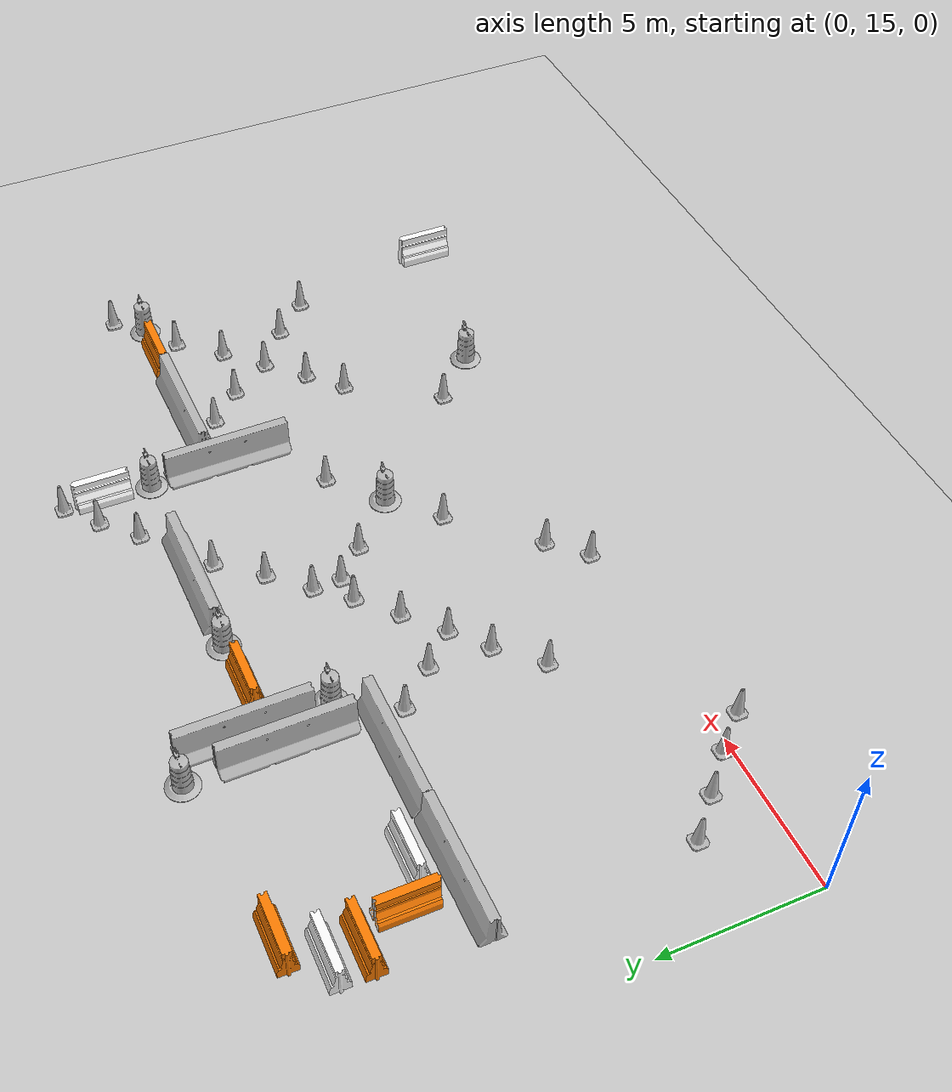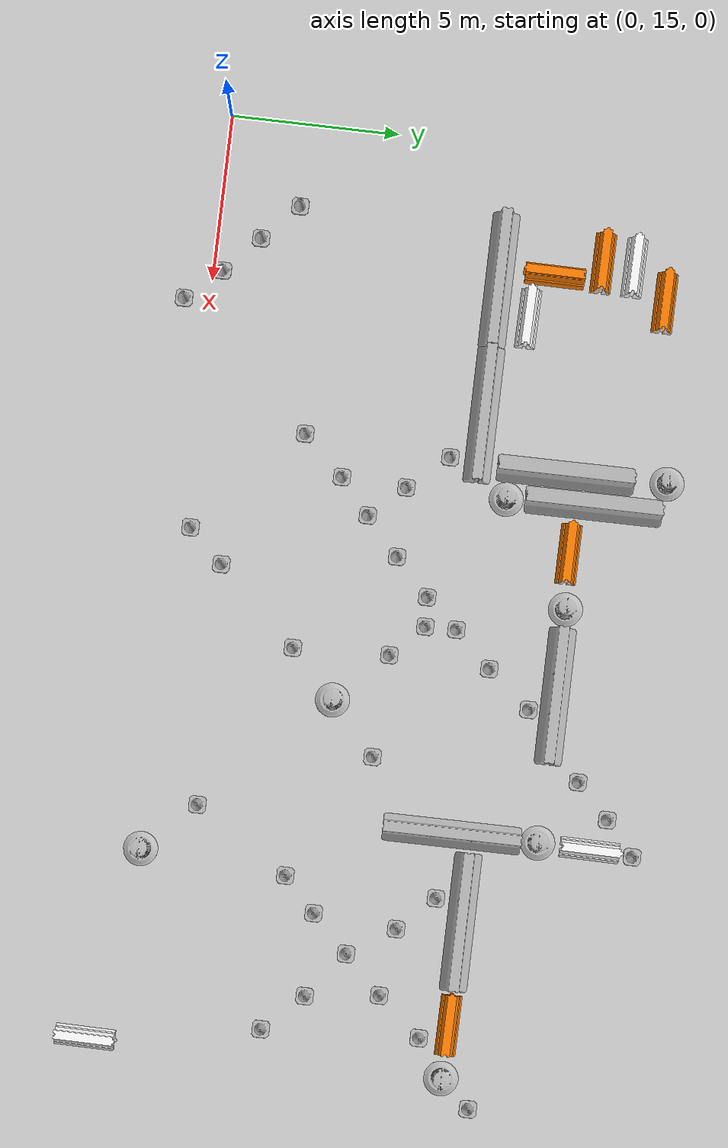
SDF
<sdf version="1.6">
 <world name="default">
  <model name="ground_plane">
   <static>1</static>
   <link name="link">
    <collision name="collision">
     <geometry><plane><normal>0 0 1</normal><size>100 100</size></plane></geometry>
     <surface>
      <contact><collide_bitmask>65535</collide_bitmask></contact>
      <friction><ode><mu>100</mu><mu2>50</mu2></ode></friction>
     </surface>
    </collision>
    <visual name="visual">
     <cast_shadows>0</cast_shadows>
     <geometry><plane><normal>0 0 1</normal><size>100 100</size></plane></geometry>
     <material>
      <script><uri>file://media/materials/scripts/gazebo.material</uri><name>Gazebo/Grey</name></script>
     </material>
    </visual>
   </link>
  </model>
  <model name="drc_practice_white_jersey_barrier_clone_clone_clone_clone_clone_clone">
   <static>1</static>
   <link name="link">
    <visual name="visual">
     <geometry>
      <mesh><uri>model://drc_practice_white_jersey_barrier/meshes/jersey_barrier.dae</uri></mesh>
     </geometry>
    </visual>
    <collision name="collision">
     <geometry>
      <mesh><uri>model://drc_practice_white_jersey_barrier/meshes/jersey_barrier.dae</uri></mesh>
     </geometry>
    </collision>
   </link>
   <pose>3.18572 27.399 0 0 0 -1.58176</pose>
  </model>
  <model name="drc_practice_organge_jersey_barrier_clone_clone">
   <static>1</static>
   <link name="link">
    <visual name="visual">
     <geometry>
      <mesh><uri>model://drc_practice_orange_jersey_barrier/meshes/jersey_barrier.dae</uri></mesh>
     </geometry>
    </visual>
    <collision name="collision">
     <geometry>
      <mesh><uri>model://drc_practice_orange_jersey_barrier/meshes/jersey_barrier.dae</uri></mesh>
     </geometry>
    </collision>
   </link>
   <pose>3.16298 26.4651 0 0 0 -1.57472</pose>
  </model>
  <model name="drc_practice_organge_jersey_barrier_clone_clone_clone">
   <static>1</static>
   <link name="link">
    <visual name="visual">
     <geometry>
      <mesh><uri>model://drc_practice_orange_jersey_barrier/meshes/jersey_barrier.dae</uri></mesh>
     </geometry>
    </visual>
    <collision name="collision">
     <geometry>
      <mesh><uri>model://drc_practice_orange_jersey_barrier/meshes/jersey_barrier.dae</uri></mesh>
     </geometry>
    </collision>
   </link>
   <pose>4.12989 28.4071 0 0 0 -1.57472</pose>
  </model>
  <model name="drc_practice_organge_jersey_barrier_clone_clone_0">
   <static>1</static>
   <link name="link">
    <visual name="visual">
     <geometry>
      <mesh><uri>model://drc_practice_orange_jersey_barrier/meshes/jersey_barrier.dae</uri></mesh>
     </geometry>
    </visual>
    <collision name="collision">
     <geometry>
      <mesh><uri>model://drc_practice_orange_jersey_barrier/meshes/jersey_barrier.dae</uri></mesh>
     </geometry>
    </collision>
   </link>
   <pose>3.6883 25.0832 0 0 -0 0</pose>
  </model>
  <model name="drc_practice_white_jersey_barrier_clone_clone_clone_clone_clone_clone_clone">
   <static>1</static>
   <link name="link">
    <visual name="visual">
     <geometry>
      <mesh><uri>model://drc_practice_white_jersey_barrier/meshes/jersey_barrier.dae</uri></mesh>
     </geometry>
    </visual>
    <collision name="collision">
     <geometry>
      <mesh><uri>model://drc_practice_white_jersey_barrier/meshes/jersey_barrier.dae</uri></mesh>
     </geometry>
    </collision>
   </link>
   <pose>5.0618 24.4389 0 0 0 -1.58176</pose>
  </model>
  <model name="jersey_barrier_clone_clone_clone_0_clone_clone_clone">
   <static>1</static>
   <link name="link">
    <visual name="visual">
     <geometry><mesh><uri>model://jersey_barrier/meshes/jersey_barrier.dae</uri></mesh></geometry>
    </visual>
    <collision name="upright">
     <pose>0 0 0.5715 0 -0 0</pose>
     <geometry><box><size>4.06542 0.3063 1.143</size></box></geometry>
    </collision>
    <collision name="base">
     <pose>0 0 0.032258 0 -0 0</pose>
     <geometry><box><size>4.06542 0.8107 0.064516</size></box></geometry>
    </collision>
    <collision name="base2">
     <pose>0 0 0.1 0 -0 0</pose>
     <geometry><box><size>4.06542 0.65 0.1</size></box></geometry>
    </collision>
    <collision name="base3">
     <pose>0 0 0.2 0 -0 0</pose>
     <geometry><box><size>4.06542 0.5 0.1</size></box></geometry>
    </collision>
    <collision name="left-angle">
     <pose>0 -0.224 0.2401 0.9 -0 0</pose>
     <geometry><box><size>4.06542 0.5 0.064516</size></box></geometry>
    </collision>
    <collision name="right-angle">
     <pose>0 0.224 0.2401 -0.9 0 0</pose>
     <geometry><box><size>4.06542 0.5 0.064516</size></box></geometry>
    </collision>
   </link>
   <pose>4.01567 23.4568 0 0 -0 0</pose>
  </model>
  <model name="jersey_barrier_clone_clone_clone_0_clone_clone_clone_clone">
   <static>1</static>
   <link name="link">
    <visual name="visual">
     <geometry><mesh><uri>model://jersey_barrier/meshes/jersey_barrier.dae</uri></mesh></geometry>
    </visual>
    <collision name="upright">
     <pose>0 0 0.5715 0 -0 0</pose>
     <geometry><box><size>4.06542 0.3063 1.143</size></box></geometry>
    </collision>
    <collision name="base">
     <pose>0 0 0.032258 0 -0 0</pose>
     <geometry><box><size>4.06542 0.8107 0.064516</size></box></geometry>
    </collision>
    <collision name="base2">
     <pose>0 0 0.1 0 -0 0</pose>
     <geometry><box><size>4.06542 0.65 0.1</size></box></geometry>
    </collision>
    <collision name="base3">
     <pose>0 0 0.2 0 -0 0</pose>
     <geometry><box><size>4.06542 0.5 0.1</size></box></geometry>
    </collision>
    <collision name="left-angle">
     <pose>0 -0.224 0.2401 0.9 -0 0</pose>
     <geometry><box><size>4.06542 0.5 0.064516</size></box></geometry>
    </collision>
    <collision name="right-angle">
     <pose>0 0.224 0.2401 -0.9 0 0</pose>
     <geometry><box><size>4.06542 0.5 0.064516</size></box></geometry>
    </collision>
   </link>
   <pose>8.05825 23.4717 0 0 -0 0</pose>
  </model>
  <model name="jersey_barrier_clone_clone_clone_clone">
   <static>1</static>
   <link name="link">
    <visual name="visual">
     <geometry><mesh><uri>model://jersey_barrier/meshes/jersey_barrier.dae</uri></mesh></geometry>
    </visual>
    <collision name="upright">
     <pose>0 0 0.5715 0 -0 0</pose>
     <geometry><box><size>4.06542 0.3063 1.143</size></box></geometry>
    </collision>
    <collision name="base">
     <pose>0 0 0.032258 0 -0 0</pose>
     <geometry><box><size>4.06542 0.8107 0.064516</size></box></geometry>
    </collision>
    <collision name="base2">
     <pose>0 0 0.1 0 -0 0</pose>
     <geometry><box><size>4.06542 0.65 0.1</size></box></geometry>
    </collision>
    <collision name="base3">
     <pose>0 0 0.2 0 -0 0</pose>
     <geometry><box><size>4.06542 0.5 0.1</size></box></geometry>
    </collision>
    <collision name="left-angle">
     <pose>0 -0.224 0.2401 0.9 -0 0</pose>
     <geometry><box><size>4.06542 0.5 0.064516</size></box></geometry>
    </collision>
    <collision name="right-angle">
     <pose>0 0.224 0.2401 -0.9 0 0</pose>
     <geometry><box><size>4.06542 0.5 0.064516</size></box></geometry>
    </collision>
   </link>
   <pose>10.3741 26.9941 0 0 0 -1.56391</pose>
  </model>
  <model name="Construction Barrel_clone_clone_0_clone">
   <static>1</static>
   <link name="link">
    <inertial>
     <pose>0 0 0.4 0 -0 0</pose>
     <mass>500</mass>
     <inertia><ixx>51.2096</ixx><iyy>51.2096</iyy><izz>25</izz><ixy>0</ixy><ixz>0</ixz><iyz>0</iyz></inertia>
    </inertial>
    <collision name="collision">
     <geometry><mesh><uri>model://construction_barrel/meshes/construction_barrel.dae</uri></mesh></geometry>
    </collision>
    <visual name="visual">
     <geometry><mesh><uri>model://construction_barrel/meshes/construction_barrel.dae</uri></mesh></geometry>
    </visual>
   </link>
   <pose>10.46 24.419 -4e-06 -5e-06 -7e-06 -0.001185</pose>
  </model>
  <model name="drc_practice_organge_jersey_barrier_clone_clone_clone_0">
   <static>1</static>
   <link name="link">
    <visual name="visual">
     <geometry>
      <mesh><uri>model://drc_practice_orange_jersey_barrier/meshes/jersey_barrier.dae</uri></mesh>
     </geometry>
    </visual>
    <collision name="collision">
     <geometry>
      <mesh><uri>model://drc_practice_orange_jersey_barrier/meshes/jersey_barrier.dae</uri></mesh>
     </geometry>
    </collision>
   </link>
   <pose>11.881 26.4249 0 0 0 -1.57472</pose>
  </model>
  <model name="Construction Barrel_clone_clone_0_clone_clone">
   <static>1</static>
   <link name="link">
    <inertial>
     <pose>0 0 0.4 0 -0 0</pose>
     <mass>500</mass>
     <inertia><ixx>51.2096</ixx><iyy>51.2096</iyy><izz>25</izz><ixy>0</ixy><ixz>0</ixz><iyz>0</iyz></inertia>
    </inertial>
    <collision name="collision">
     <geometry><mesh><uri>model://construction_barrel/meshes/construction_barrel.dae</uri></mesh></geometry>
    </collision>
    <visual name="visual">
     <geometry><mesh><uri>model://construction_barrel/meshes/construction_barrel.dae</uri></mesh></geometry>
    </visual>
   </link>
   <pose>13.5043 26.5281 -0 0 0 -0.001456</pose>
  </model>
  <model name="jersey_barrier_clone_clone_clone_0_clone_clone_clone_clone_clone">
   <static>1</static>
   <link name="link">
    <visual name="visual">
     <geometry><mesh><uri>model://jersey_barrier/meshes/jersey_barrier.dae</uri></mesh></geometry>
    </visual>
    <collision name="upright">
     <pose>0 0 0.5715 0 -0 0</pose>
     <geometry><box><size>4.06542 0.3063 1.143</size></box></geometry>
    </collision>
    <collision name="base">
     <pose>0 0 0.032258 0 -0 0</pose>
     <geometry><box><size>4.06542 0.8107 0.064516</size></box></geometry>
    </collision>
    <collision name="base2">
     <pose>0 0 0.1 0 -0 0</pose>
     <geometry><box><size>4.06542 0.65 0.1</size></box></geometry>
    </collision>
    <collision name="base3">
     <pose>0 0 0.2 0 -0 0</pose>
     <geometry><box><size>4.06542 0.5 0.1</size></box></geometry>
    </collision>
    <collision name="left-angle">
     <pose>0 -0.224 0.2401 0.9 -0 0</pose>
     <geometry><box><size>4.06542 0.5 0.064516</size></box></geometry>
    </collision>
    <collision name="right-angle">
     <pose>0 0.224 0.2401 -0.9 0 0</pose>
     <geometry><box><size>4.06542 0.5 0.064516</size></box></geometry>
    </collision>
   </link>
   <pose>16.0869 26.5207 0 0 -0 0</pose>
  </model>
  <model name="Construction Cone_0_clone_0_clone_clone_clone_clone">
   <static>1</static>
   <link name="link">
    <collision name="collision">
     <geometry>
      <mesh><scale>10 10 10</scale><uri>model://construction_cone/meshes/construction_cone.dae</uri></mesh>
     </geometry>
    </collision>
    <visual name="visual">
     <geometry>
      <mesh><scale>10 10 10</scale><uri>model://construction_cone/meshes/construction_cone.dae</uri></mesh>
     </geometry>
    </visual>
    <inertial>
     <inertia><ixx>1</ixx><ixy>0</ixy><ixz>0</ixz><iyy>1</iyy><iyz>0</iyz><izz>1</izz></inertia>
     <mass>1</mass>
    </inertial>
   </link>
   <pose>18.5169 27.4726 -0 0 -0 0</pose>
  </model>
  <model name="Construction Cone_0_clone_0_clone_clone_clone_clone_0">
   <static>1</static>
   <link name="link">
    <collision name="collision">
     <geometry>
      <mesh><scale>10 10 10</scale><uri>model://construction_cone/meshes/construction_cone.dae</uri></mesh>
     </geometry>
    </collision>
    <visual name="visual">
     <geometry>
      <mesh><scale>10 10 10</scale><uri>model://construction_cone/meshes/construction_cone.dae</uri></mesh>
     </geometry>
    </visual>
    <inertial>
     <inertia><ixx>1</ixx><ixy>0</ixy><ixz>0</ixz><iyy>1</iyy><iyz>0</iyz><izz>1</izz></inertia>
     <mass>1</mass>
    </inertial>
   </link>
   <pose>19.5169 28.4493 -0 0 -0 0</pose>
  </model>
  <model name="Construction Cone_0_clone_0_clone_clone_clone_clone_1">
   <static>1</static>
   <link name="link">
    <collision name="collision">
     <geometry>
      <mesh><scale>10 10 10</scale><uri>model://construction_cone/meshes/construction_cone.dae</uri></mesh>
     </geometry>
    </collision>
    <visual name="visual">
     <geometry>
      <mesh><scale>10 10 10</scale><uri>model://construction_cone/meshes/construction_cone.dae</uri></mesh>
     </geometry>
    </visual>
    <inertial>
     <inertia><ixx>1</ixx><ixy>0</ixy><ixz>0</ixz><iyy>1</iyy><iyz>0</iyz><izz>1</izz></inertia>
     <mass>1</mass>
    </inertial>
   </link>
   <pose>20.5097 29.2967 -3e-06 -3e-06 -1e-06 -0</pose>
  </model>
  <model name="drc_practice_white_jersey_barrier_clone_clone_clone_0_clone_0_clone_clone">
   <static>1</static>
   <link name="link">
    <visual name="visual">
     <geometry>
      <mesh><uri>model://drc_practice_white_jersey_barrier/meshes/jersey_barrier.dae</uri></mesh>
     </geometry>
    </visual>
    <collision name="collision">
     <geometry>
      <mesh><uri>model://drc_practice_white_jersey_barrier/meshes/jersey_barrier.dae</uri></mesh>
     </geometry>
    </collision>
   </link>
   <pose>20.4533 28.0237 0 0 -0 3.13979</pose>
  </model>
  <model name="Construction Barrel_clone_clone_0_clone_clone_clone">
   <static>1</static>
   <link name="link">
    <inertial>
     <pose>0 0 0.4 0 -0 0</pose>
     <mass>500</mass>
     <inertia><ixx>51.2096</ixx><iyy>51.2096</iyy><izz>25</izz><ixy>0</ixy><ixz>0</ixz><iyz>0</iyz></inertia>
    </inertial>
    <collision name="collision">
     <geometry><mesh><uri>model://construction_barrel/meshes/construction_barrel.dae</uri></mesh></geometry>
    </collision>
    <visual name="visual">
     <geometry><mesh><uri>model://construction_barrel/meshes/construction_barrel.dae</uri></mesh></geometry>
    </visual>
   </link>
   <pose>20.4259 26.4992 -0 -0 -0 -9.7e-05</pose>
  </model>
  <model name="jersey_barrier_clone_clone_clone_clone_clone">
   <static>1</static>
   <link name="link">
    <visual name="visual">
     <geometry><mesh><uri>model://jersey_barrier/meshes/jersey_barrier.dae</uri></mesh></geometry>
    </visual>
    <collision name="upright">
     <pose>0 0 0.5715 0 -0 0</pose>
     <geometry><box><size>4.06542 0.3063 1.143</size></box></geometry>
    </collision>
    <collision name="base">
     <pose>0 0 0.032258 0 -0 0</pose>
     <geometry><box><size>4.06542 0.8107 0.064516</size></box></geometry>
    </collision>
    <collision name="base2">
     <pose>0 0 0.1 0 -0 0</pose>
     <geometry><box><size>4.06542 0.65 0.1</size></box></geometry>
    </collision>
    <collision name="base3">
     <pose>0 0 0.2 0 -0 0</pose>
     <geometry><box><size>4.06542 0.5 0.1</size></box></geometry>
    </collision>
    <collision name="left-angle">
     <pose>0 -0.224 0.2401 0.9 -0 0</pose>
     <geometry><box><size>4.06542 0.5 0.064516</size></box></geometry>
    </collision>
    <collision name="right-angle">
     <pose>0 0.224 0.2401 -0.9 0 0</pose>
     <geometry><box><size>4.06542 0.5 0.064516</size></box></geometry>
    </collision>
   </link>
   <pose>20.4546 23.9567 0 0 0 -1.56391</pose>
  </model>
  <model name="Construction Cone_0_clone_0_clone_clone_clone_clone_clone">
   <static>1</static>
   <link name="link">
    <collision name="collision">
     <geometry>
      <mesh><scale>10 10 10</scale><uri>model://construction_cone/meshes/construction_cone.dae</uri></mesh>
     </geometry>
    </collision>
    <visual name="visual">
     <geometry>
      <mesh><scale>10 10 10</scale><uri>model://construction_cone/meshes/construction_cone.dae</uri></mesh>
     </geometry>
    </visual>
    <inertial>
     <inertia><ixx>1</ixx><ixy>0</ixy><ixz>0</ixz><iyy>1</iyy><iyz>0</iyz><izz>1</izz></inertia>
     <mass>1</mass>
    </inertial>
   </link>
   <pose>16.5664 25.784 -0 0 -0 0</pose>
  </model>
  <model name="Construction Cone_0_clone_0_clone_clone_clone_clone_clone_0">
   <static>1</static>
   <link name="link">
    <collision name="collision">
     <geometry>
      <mesh><scale>10 10 10</scale><uri>model://construction_cone/meshes/construction_cone.dae</uri></mesh>
     </geometry>
    </collision>
    <visual name="visual">
     <geometry>
      <mesh><scale>10 10 10</scale><uri>model://construction_cone/meshes/construction_cone.dae</uri></mesh>
     </geometry>
    </visual>
    <inertial>
     <inertia><ixx>1</ixx><ixy>0</ixy><ixz>0</ixz><iyy>1</iyy><iyz>0</iyz><izz>1</izz></inertia>
     <mass>1</mass>
    </inertial>
   </link>
   <pose>15.5064 24.4982 -0 0 -0 0</pose>
  </model>
  <model name="Construction Cone_0_clone_0_clone_clone_clone_clone_clone_1">
   <static>1</static>
   <link name="link">
    <collision name="collision">
     <geometry>
      <mesh><scale>10 10 10</scale><uri>model://construction_cone/meshes/construction_cone.dae</uri></mesh>
     </geometry>
    </collision>
    <visual name="visual">
     <geometry>
      <mesh><scale>10 10 10</scale><uri>model://construction_cone/meshes/construction_cone.dae</uri></mesh>
     </geometry>
    </visual>
    <inertial>
     <inertia><ixx>1</ixx><ixy>0</ixy><ixz>0</ixz><iyy>1</iyy><iyz>0</iyz><izz>1</izz></inertia>
     <mass>1</mass>
    </inertial>
   </link>
   <pose>14.4695 23.4001 -0 0 -0 0</pose>
  </model>
  <model name="Construction Cone_0_clone_0_clone_clone_clone_clone_clone_2">
   <static>1</static>
   <link name="link">
    <collision name="collision">
     <geometry>
      <mesh><scale>10 10 10</scale><uri>model://construction_cone/meshes/construction_cone.dae</uri></mesh>
     </geometry>
    </collision>
    <visual name="visual">
     <geometry>
      <mesh><scale>10 10 10</scale><uri>model://construction_cone/meshes/construction_cone.dae</uri></mesh>
     </geometry>
    </visual>
    <inertial>
     <inertia><ixx>1</ixx><ixy>0</ixy><ixz>0</ixz><iyy>1</iyy><iyz>0</iyz><izz>1</izz></inertia>
     <mass>1</mass>
    </inertial>
   </link>
   <pose>13.6165 22.4345 -1e-05 -0 -0 -0</pose>
  </model>
  <model name="Construction Cone_0_clone_0_clone_clone_clone_clone_clone_3">
   <static>1</static>
   <link name="link">
    <collision name="collision">
     <geometry>
      <mesh><scale>10 10 10</scale><uri>model://construction_cone/meshes/construction_cone.dae</uri></mesh>
     </geometry>
    </collision>
    <visual name="visual">
     <geometry>
      <mesh><scale>10 10 10</scale><uri>model://construction_cone/meshes/construction_cone.dae</uri></mesh>
     </geometry>
    </visual>
    <inertial>
     <inertia><ixx>1</ixx><ixy>0</ixy><ixz>0</ixz><iyy>1</iyy><iyz>0</iyz><izz>1</izz></inertia>
     <mass>1</mass>
    </inertial>
   </link>
   <pose>14.4874 22.4791 -0 0 -0 0</pose>
  </model>
  <model name="Construction Cone_0_clone_0_clone_clone_clone_clone_clone_4">
   <static>1</static>
   <link name="link">
    <collision name="collision">
     <geometry>
      <mesh><scale>10 10 10</scale><uri>model://construction_cone/meshes/construction_cone.dae</uri></mesh>
     </geometry>
    </collision>
    <visual name="visual">
     <geometry>
      <mesh><scale>10 10 10</scale><uri>model://construction_cone/meshes/construction_cone.dae</uri></mesh>
     </geometry>
    </visual>
    <inertial>
     <inertia><ixx>1</ixx><ixy>0</ixy><ixz>0</ixz><iyy>1</iyy><iyz>0</iyz><izz>1</izz></inertia>
     <mass>1</mass>
    </inertial>
   </link>
   <pose>12.5306 21.4117 -0 0 -0 0</pose>
  </model>
  <model name="Construction Cone_0_clone_0_clone_clone_clone_clone_clone_5">
   <static>1</static>
   <link name="link">
    <collision name="collision">
     <geometry>
      <mesh><scale>10 10 10</scale><uri>model://construction_cone/meshes/construction_cone.dae</uri></mesh>
     </geometry>
    </collision>
    <visual name="visual">
     <geometry>
      <mesh><scale>10 10 10</scale><uri>model://construction_cone/meshes/construction_cone.dae</uri></mesh>
     </geometry>
    </visual>
    <inertial>
     <inertia><ixx>1</ixx><ixy>0</ixy><ixz>0</ixz><iyy>1</iyy><iyz>0</iyz><izz>1</izz></inertia>
     <mass>1</mass>
    </inertial>
   </link>
   <pose>11.4155 20.4091 -0 0 -0 0</pose>
  </model>
  <model name="Construction Cone_0_clone_0_clone_clone_clone_clone_clone_6">
   <static>1</static>
   <link name="link">
    <collision name="collision">
     <geometry>
      <mesh><scale>10 10 10</scale><uri>model://construction_cone/meshes/construction_cone.dae</uri></mesh>
     </geometry>
    </collision>
    <visual name="visual">
     <geometry>
      <mesh><scale>10 10 10</scale><uri>model://construction_cone/meshes/construction_cone.dae</uri></mesh>
     </geometry>
    </visual>
    <inertial>
     <inertia><ixx>1</ixx><ixy>0</ixy><ixz>0</ixz><iyy>1</iyy><iyz>0</iyz><izz>1</izz></inertia>
     <mass>1</mass>
    </inertial>
   </link>
   <pose>10.4589 21.4449 -0 0 -0 0</pose>
  </model>
  <model name="Construction Cone_0_clone_0_clone_clone_clone_clone_clone_7">
   <static>1</static>
   <link name="link">
    <collision name="collision">
     <geometry>
      <mesh><scale>10 10 10</scale><uri>model://construction_cone/meshes/construction_cone.dae</uri></mesh>
     </geometry>
    </collision>
    <visual name="visual">
     <geometry>
      <mesh><scale>10 10 10</scale><uri>model://construction_cone/meshes/construction_cone.dae</uri></mesh>
     </geometry>
    </visual>
    <inertial>
     <inertia><ixx>1</ixx><ixy>0</ixy><ixz>0</ixz><iyy>1</iyy><iyz>0</iyz><izz>1</izz></inertia>
     <mass>1</mass>
    </inertial>
   </link>
   <pose>10.3713 19.5185 -0 0 -0 0</pose>
  </model>
  <model name="Construction Cone_0_clone_0_clone_clone_clone_clone_clone_8">
   <static>1</static>
   <link name="link">
    <collision name="collision">
     <geometry>
      <mesh><scale>10 10 10</scale><uri>model://construction_cone/meshes/construction_cone.dae</uri></mesh>
     </geometry>
    </collision>
    <visual name="visual">
     <geometry>
      <mesh><scale>10 10 10</scale><uri>model://construction_cone/meshes/construction_cone.dae</uri></mesh>
     </geometry>
    </visual>
    <inertial>
     <inertia><ixx>1</ixx><ixy>0</ixy><ixz>0</ixz><iyy>1</iyy><iyz>0</iyz><izz>1</izz></inertia>
     <mass>1</mass>
    </inertial>
   </link>
   <pose>9.21897 18.2858 -0 0 -0 0</pose>
  </model>
  <model name="Construction Barrel_clone_clone_0_clone_clone_0">
   <static>1</static>
   <link name="link">
    <inertial>
     <pose>0 0 0.4 0 -0 0</pose>
     <mass>500</mass>
     <inertia><ixx>51.2096</ixx><iyy>51.2096</iyy><izz>25</izz><ixy>0</ixy><ixz>0</ixz><iyz>0</iyz></inertia>
    </inertial>
    <collision name="collision">
     <geometry><mesh><uri>model://construction_barrel/meshes/construction_barrel.dae</uri></mesh></geometry>
    </collision>
    <visual name="visual">
     <geometry><mesh><uri>model://construction_barrel/meshes/construction_barrel.dae</uri></mesh></geometry>
    </visual>
   </link>
   <pose>16.9571 20.0177 0 0 -0 0.001192</pose>
  </model>
  <model name="Construction Cone_0_clone_0_clone_clone_clone_clone_clone_3_clone_clone">
   <static>1</static>
   <link name="link">
    <collision name="collision">
     <geometry>
      <mesh><scale>10 10 10</scale><uri>model://construction_cone/meshes/construction_cone.dae</uri></mesh>
     </geometry>
    </collision>
    <visual name="visual">
     <geometry>
      <mesh><scale>10 10 10</scale><uri>model://construction_cone/meshes/construction_cone.dae</uri></mesh>
     </geometry>
    </visual>
    <inertial>
     <inertia><ixx>1</ixx><ixy>0</ixy><ixz>0</ixz><iyy>1</iyy><iyz>0</iyz><izz>1</izz></inertia>
     <mass>1</mass>
    </inertial>
   </link>
   <pose>15.5665 18.676 -0 0 -0 0</pose>
  </model>
  <model name="Construction Cone_0_clone_0_clone_clone_clone_clone_clone_3_clone_clone_0">
   <static>1</static>
   <link name="link">
    <collision name="collision">
     <geometry>
      <mesh><scale>10 10 10</scale><uri>model://construction_cone/meshes/construction_cone.dae</uri></mesh>
     </geometry>
    </collision>
    <visual name="visual">
     <geometry>
      <mesh><scale>10 10 10</scale><uri>model://construction_cone/meshes/construction_cone.dae</uri></mesh>
     </geometry>
    </visual>
    <inertial>
     <inertia><ixx>1</ixx><ixy>0</ixy><ixz>0</ixz><iyy>1</iyy><iyz>0</iyz><izz>1</izz></inertia>
     <mass>1</mass>
    </inertial>
   </link>
   <pose>15.4462 21.5255 -0 0 -1e-06 0</pose>
  </model>
  <model name="Construction Cone_0_clone_0_clone_clone_clone_clone_clone_3_clone_clone_1">
   <static>1</static>
   <link name="link">
    <collision name="collision">
     <geometry>
      <mesh><scale>10 10 10</scale><uri>model://construction_cone/meshes/construction_cone.dae</uri></mesh>
     </geometry>
    </collision>
    <visual name="visual">
     <geometry>
      <mesh><scale>10 10 10</scale><uri>model://construction_cone/meshes/construction_cone.dae</uri></mesh>
     </geometry>
    </visual>
    <inertial>
     <inertia><ixx>1</ixx><ixy>0</ixy><ixz>0</ixz><iyy>1</iyy><iyz>0</iyz><izz>1</izz></inertia>
     <mass>1</mass>
    </inertial>
   </link>
   <pose>18.4838 21.385 -0 0 -1e-06 0</pose>
  </model>
  <model name="Construction Cone_0_clone_0_clone_clone_clone_clone_clone_3_clone_0_clone">
   <static>1</static>
   <link name="link">
    <collision name="collision">
     <geometry>
      <mesh><scale>10 10 10</scale><uri>model://construction_cone/meshes/construction_cone.dae</uri></mesh>
     </geometry>
    </collision>
    <visual name="visual">
     <geometry>
      <mesh><scale>10 10 10</scale><uri>model://construction_cone/meshes/construction_cone.dae</uri></mesh>
     </geometry>
    </visual>
    <inertial>
     <inertia><ixx>1</ixx><ixy>0</ixy><ixz>0</ixz><iyy>1</iyy><iyz>0</iyz><izz>1</izz></inertia>
     <mass>1</mass>
    </inertial>
   </link>
   <pose>20.4774 16.4375 -0 0 -0 0</pose>
  </model>
  <model name="jersey_barrier_clone_clone_clone_0_clone_clone_clone_clone_clone_clone">
   <static>1</static>
   <link name="link">
    <visual name="visual">
     <geometry><mesh><uri>model://jersey_barrier/meshes/jersey_barrier.dae</uri></mesh></geometry>
    </visual>
    <collision name="upright">
     <pose>0 0 0.5715 0 -0 0</pose>
     <geometry><box><size>4.06542 0.3063 1.143</size></box></geometry>
    </collision>
    <collision name="base">
     <pose>0 0 0.032258 0 -0 0</pose>
     <geometry><box><size>4.06542 0.8107 0.064516</size></box></geometry>
    </collision>
    <collision name="base2">
     <pose>0 0 0.1 0 -0 0</pose>
     <geometry><box><size>4.06542 0.65 0.1</size></box></geometry>
    </collision>
    <collision name="base3">
     <pose>0 0 0.2 0 -0 0</pose>
     <geometry><box><size>4.06542 0.5 0.1</size></box></geometry>
    </collision>
    <collision name="left-angle">
     <pose>0 -0.224 0.2401 0.9 -0 0</pose>
     <geometry><box><size>4.06542 0.5 0.064516</size></box></geometry>
    </collision>
    <collision name="right-angle">
     <pose>0 0.224 0.2401 -0.9 0 0</pose>
     <geometry><box><size>4.06542 0.5 0.064516</size></box></geometry>
    </collision>
   </link>
   <pose>22.9889 24.5203 0 0 -0 0</pose>
  </model>
  <model name="Construction Barrel_clone_clone_0_clone_clone_clone_2">
   <static>1</static>
   <link name="link">
    <inertial>
     <pose>0 0 0.4 0 -0 0</pose>
     <mass>500</mass>
     <inertia><ixx>51.2096</ixx><iyy>51.2096</iyy><izz>25</izz><ixy>0</ixy><ixz>0</ixz><iyz>0</iyz></inertia>
    </inertial>
    <collision name="collision">
     <geometry><mesh><uri>model://construction_barrel/meshes/construction_barrel.dae</uri></mesh></geometry>
    </collision>
    <visual name="visual">
     <geometry><mesh><uri>model://construction_barrel/meshes/construction_barrel.dae</uri></mesh></geometry>
    </visual>
   </link>
   <pose>27.5834 24.4727 -0 0 -0 0.021971</pose>
  </model>
  <model name="Construction Cone_0_clone_0_clone_clone_clone_clone_clone_6_clone">
   <static>1</static>
   <link name="link">
    <collision name="collision">
     <geometry>
      <mesh><scale>10 10 10</scale><uri>model://construction_cone/meshes/construction_cone.dae</uri></mesh>
     </geometry>
    </collision>
    <visual name="visual">
     <geometry>
      <mesh><scale>10 10 10</scale><uri>model://construction_cone/meshes/construction_cone.dae</uri></mesh>
     </geometry>
    </visual>
    <inertial>
     <inertia><ixx>1</ixx><ixy>0</ixy><ixz>0</ixz><iyy>1</iyy><iyz>0</iyz><izz>1</izz></inertia>
     <mass>1</mass>
    </inertial>
   </link>
   <pose>9.41231 22.6309 -0 0 -0 0</pose>
  </model>
  <model name="Construction Cone_0_clone_0_clone_clone_clone_clone_clone_3_clone_clone_clone">
   <static>1</static>
   <link name="link">
    <collision name="collision">
     <geometry>
      <mesh><scale>10 10 10</scale><uri>model://construction_cone/meshes/construction_cone.dae</uri></mesh>
     </geometry>
    </collision>
    <visual name="visual">
     <geometry>
      <mesh><scale>10 10 10</scale><uri>model://construction_cone/meshes/construction_cone.dae</uri></mesh>
     </geometry>
    </visual>
    <inertial>
     <inertia><ixx>1</ixx><ixy>0</ixy><ixz>0</ixz><iyy>1</iyy><iyz>0</iyz><izz>1</izz></inertia>
     <mass>1</mass>
    </inertial>
   </link>
   <pose>13.3589 16.2835 -0 0 -1e-06 0</pose>
  </model>
  <model name="Construction Cone_0_clone_0_clone_clone_clone_clone_clone_3_clone_clone_clone_0">
   <static>1</static>
   <link name="link">
    <collision name="collision">
     <geometry>
      <mesh><scale>10 10 10</scale><uri>model://construction_cone/meshes/construction_cone.dae</uri></mesh>
     </geometry>
    </collision>
    <visual name="visual">
     <geometry>
      <mesh><scale>10 10 10</scale><uri>model://construction_cone/meshes/construction_cone.dae</uri></mesh>
     </geometry>
    </visual>
    <inertial>
     <inertia><ixx>1</ixx><ixy>0</ixy><ixz>0</ixz><iyy>1</iyy><iyz>0</iyz><izz>1</izz></inertia>
     <mass>1</mass>
    </inertial>
   </link>
   <pose>12.3815 15.2493 0 -0 -0 -0</pose>
  </model>
  <model name="drc_practice_white_jersey_barrier_clone_clone_clone_0_clone_0_clone_clone_clone">
   <static>1</static>
   <link name="link">
    <visual name="visual">
     <geometry>
      <mesh><uri>model://drc_practice_white_jersey_barrier/meshes/jersey_barrier.dae</uri></mesh>
     </geometry>
    </visual>
    <collision name="collision">
     <geometry>
      <mesh><uri>model://drc_practice_white_jersey_barrier/meshes/jersey_barrier.dae</uri></mesh>
     </geometry>
    </collision>
   </link>
   <pose>27.5941 13.9985 0 0 -0 3.13979</pose>
  </model>
  <model name="Construction Cone_0_clone_0_clone_clone_clone_clone_clone_3_clone_0_clone_clone_2_clone_clone_clone">
   <static>1</static>
   <link name="link">
    <collision name="collision">
     <geometry>
      <mesh><scale>10 10 10</scale><uri>model://construction_cone/meshes/construction_cone.dae</uri></mesh>
     </geometry>
    </collision>
    <visual name="visual">
     <geometry>
      <mesh><scale>10 10 10</scale><uri>model://construction_cone/meshes/construction_cone.dae</uri></mesh>
     </geometry>
    </visual>
    <inertial>
     <inertia><ixx>1</ixx><ixy>0</ixy><ixz>0</ixz><iyy>1</iyy><iyz>0</iyz><izz>1</izz></inertia>
     <mass>1</mass>
    </inertial>
   </link>
   <pose>28.3754 25.3563 -0 0 -1e-06 0</pose>
  </model>
  <model name="Construction Cone_0_clone_0_clone_clone_clone_clone_clone_3_clone_0_clone_clone_2_clone_clone_clone_clone">
   <static>1</static>
   <link name="link">
    <collision name="collision">
     <geometry>
      <mesh><scale>10 10 10</scale><uri>model://construction_cone/meshes/construction_cone.dae</uri></mesh>
     </geometry>
    </collision>
    <visual name="visual">
     <geometry>
      <mesh><scale>10 10 10</scale><uri>model://construction_cone/meshes/construction_cone.dae</uri></mesh>
     </geometry>
    </visual>
    <inertial>
     <inertia><ixx>1</ixx><ixy>0</ixy><ixz>0</ixz><iyy>1</iyy><iyz>0</iyz><izz>1</izz></inertia>
     <mass>1</mass>
    </inertial>
   </link>
   <pose>26.4919 23.6928 -0 -0 -0 -0</pose>
  </model>
  <model name="Construction Cone_0_clone_0_clone_clone_clone_clone_clone_3_clone_0_clone_clone_2_clone_clone_clone_clone_0">
   <static>1</static>
   <link name="link">
    <collision name="collision">
     <geometry>
      <mesh><scale>10 10 10</scale><uri>model://construction_cone/meshes/construction_cone.dae</uri></mesh>
     </geometry>
    </collision>
    <visual name="visual">
     <geometry>
      <mesh><scale>10 10 10</scale><uri>model://construction_cone/meshes/construction_cone.dae</uri></mesh>
     </geometry>
    </visual>
    <inertial>
     <inertia><ixx>1</ixx><ixy>0</ixy><ixz>0</ixz><iyy>1</iyy><iyz>0</iyz><izz>1</izz></inertia>
     <mass>1</mass>
    </inertial>
   </link>
   <pose>25.3968 22.3982 -0 0 -1e-06 0</pose>
  </model>
  <model name="Construction Cone_0_clone_0_clone_clone_clone_clone_clone_3_clone_0_clone_clone_2_clone_clone_clone_clone_1">
   <static>1</static>
   <link name="link">
    <collision name="collision">
     <geometry>
      <mesh><scale>10 10 10</scale><uri>model://construction_cone/meshes/construction_cone.dae</uri></mesh>
     </geometry>
    </collision>
    <visual name="visual">
     <geometry>
      <mesh><scale>10 10 10</scale><uri>model://construction_cone/meshes/construction_cone.dae</uri></mesh>
     </geometry>
    </visual>
    <inertial>
     <inertia><ixx>1</ixx><ixy>0</ixy><ixz>0</ixz><iyy>1</iyy><iyz>0</iyz><izz>1</izz></inertia>
     <mass>1</mass>
    </inertial>
   </link>
   <pose>24.3052 21.2912 -0 0 -1e-06 0</pose>
  </model>
  <model name="Construction Cone_0_clone_0_clone_clone_clone_clone_clone_3_clone_0_clone_clone_2_clone_clone_clone_clone_2">
   <static>1</static>
   <link name="link">
    <collision name="collision">
     <geometry>
      <mesh><scale>10 10 10</scale><uri>model://construction_cone/meshes/construction_cone.dae</uri></mesh>
     </geometry>
    </collision>
    <visual name="visual">
     <geometry>
      <mesh><scale>10 10 10</scale><uri>model://construction_cone/meshes/construction_cone.dae</uri></mesh>
     </geometry>
    </visual>
    <inertial>
     <inertia><ixx>1</ixx><ixy>0</ixy><ixz>0</ixz><iyy>1</iyy><iyz>0</iyz><izz>1</izz></inertia>
     <mass>1</mass>
    </inertial>
   </link>
   <pose>23.2366 20.2071 0 -0 -0 -0</pose>
  </model>
  <model name="Construction Cone_0_clone_0_clone_clone_clone_clone_clone_3_clone_0_clone_clone_2_clone_clone_clone_clone_3">
   <static>1</static>
   <link name="link">
    <collision name="collision">
     <geometry>
      <mesh><scale>10 10 10</scale><uri>model://construction_cone/meshes/construction_cone.dae</uri></mesh>
     </geometry>
    </collision>
    <visual name="visual">
     <geometry>
      <mesh><scale>10 10 10</scale><uri>model://construction_cone/meshes/construction_cone.dae</uri></mesh>
     </geometry>
    </visual>
    <inertial>
     <inertia><ixx>1</ixx><ixy>0</ixy><ixz>0</ixz><iyy>1</iyy><iyz>0</iyz><izz>1</izz></inertia>
     <mass>1</mass>
    </inertial>
   </link>
   <pose>22.2408 19.2513 -0 -0 -0 -0</pose>
  </model>
  <model name="Construction Cone_0_clone_0_clone_clone_clone_clone_clone_3_clone_0_clone_clone_2_clone_clone_clone_clone_4">
   <static>1</static>
   <link name="link">
    <collision name="collision">
     <geometry>
      <mesh><scale>10 10 10</scale><uri>model://construction_cone/meshes/construction_cone.dae</uri></mesh>
     </geometry>
    </collision>
    <visual name="visual">
     <geometry>
      <mesh><scale>10 10 10</scale><uri>model://construction_cone/meshes/construction_cone.dae</uri></mesh>
     </geometry>
    </visual>
    <inertial>
     <inertia><ixx>1</ixx><ixy>0</ixy><ixz>0</ixz><iyy>1</iyy><iyz>0</iyz><izz>1</izz></inertia>
     <mass>1</mass>
    </inertial>
   </link>
   <pose>22.3851 23.7197 -0 0 -0 0</pose>
  </model>
  <model name="Construction Cone_0_clone_0_clone_clone_clone_clone_clone_3_clone_0_clone_clone_2_clone_clone_clone_clone_5">
   <static>1</static>
   <link name="link">
    <collision name="collision">
     <geometry>
      <mesh><scale>10 10 10</scale><uri>model://construction_cone/meshes/construction_cone.dae</uri></mesh>
     </geometry>
    </collision>
    <visual name="visual">
     <geometry>
      <mesh><scale>10 10 10</scale><uri>model://construction_cone/meshes/construction_cone.dae</uri></mesh>
     </geometry>
    </visual>
    <inertial>
     <inertia><ixx>1</ixx><ixy>0</ixy><ixz>0</ixz><iyy>1</iyy><iyz>0</iyz><izz>1</izz></inertia>
     <mass>1</mass>
    </inertial>
   </link>
   <pose>23.4111 22.6637 0 -0 -0 -0</pose>
  </model>
  <model name="Construction Cone_0_clone_0_clone_clone_clone_clone_clone_3_clone_0_clone_clone_2_clone_clone_clone_clone_6">
   <static>1</static>
   <link name="link">
    <collision name="collision">
     <geometry>
      <mesh><scale>10 10 10</scale><uri>model://construction_cone/meshes/construction_cone.dae</uri></mesh>
     </geometry>
    </collision>
    <visual name="visual">
     <geometry>
      <mesh><scale>10 10 10</scale><uri>model://construction_cone/meshes/construction_cone.dae</uri></mesh>
     </geometry>
    </visual>
    <inertial>
     <inertia><ixx>1</ixx><ixy>0</ixy><ixz>0</ixz><iyy>1</iyy><iyz>0</iyz><izz>1</izz></inertia>
     <mass>1</mass>
    </inertial>
   </link>
   <pose>25.6688 20.2326 0 -0 -0 -0</pose>
  </model>
  <model name="Construction Cone_0_clone_0_clone_clone_clone_clone_clone_3_clone_0_clone_clone_2_clone_clone_clone_clone_7">
   <static>1</static>
   <link name="link">
    <collision name="collision">
     <geometry>
      <mesh><scale>10 10 10</scale><uri>model://construction_cone/meshes/construction_cone.dae</uri></mesh>
     </geometry>
    </collision>
    <visual name="visual">
     <geometry>
      <mesh><scale>10 10 10</scale><uri>model://construction_cone/meshes/construction_cone.dae</uri></mesh>
     </geometry>
    </visual>
    <inertial>
     <inertia><ixx>1</ixx><ixy>0</ixy><ixz>0</ixz><iyy>1</iyy><iyz>0</iyz><izz>1</izz></inertia>
     <mass>1</mass>
    </inertial>
   </link>
   <pose>26.7748 19.0703 -0 0 -1e-06 0</pose>
  </model>
  <model name="Construction Cone_0_clone_0_clone_clone_clone_clone_clone_3_clone_0_clone_clone_clone_1_clone_1_clone_6_clone_1">
   <static>1</static>
   <link name="link">
    <collision name="collision">
     <geometry>
      <mesh><scale>10 10 10</scale><uri>model://construction_cone/meshes/construction_cone.dae</uri></mesh>
     </geometry>
    </collision>
    <visual name="visual">
     <geometry>
      <mesh><scale>10 10 10</scale><uri>model://construction_cone/meshes/construction_cone.dae</uri></mesh>
     </geometry>
    </visual>
    <inertial>
     <inertia><ixx>1</ixx><ixy>0</ixy><ixz>0</ixz><iyy>1</iyy><iyz>0</iyz><izz>1</izz></inertia>
     <mass>1</mass>
    </inertial>
   </link>
   <pose>2.48407 17.3334 -1e-05 0 -0 0</pose>
  </model>
  <model name="Construction Cone_0_clone_0_clone_clone_clone_clone_clone_3_clone_0_clone_clone_clone_1_clone_1_clone_6_clone_2">
   <static>1</static>
   <link name="link">
    <collision name="collision">
     <geometry>
      <mesh><scale>10 10 10</scale><uri>model://construction_cone/meshes/construction_cone.dae</uri></mesh>
     </geometry>
    </collision>
    <visual name="visual">
     <geometry>
      <mesh><scale>10 10 10</scale><uri>model://construction_cone/meshes/construction_cone.dae</uri></mesh>
     </geometry>
    </visual>
    <inertial>
     <inertia><ixx>1</ixx><ixy>0</ixy><ixz>0</ixz><iyy>1</iyy><iyz>0</iyz><izz>1</izz></inertia>
     <mass>1</mass>
    </inertial>
   </link>
   <pose>3.57517 16.2917 -6e-06 -4e-06 0 0</pose>
  </model>
  <model name="Construction Cone_0_clone_0_clone_clone_clone_clone_clone_3_clone_0_clone_clone_clone_1_clone_1_clone_6_clone_3">
   <static>1</static>
   <link name="link">
    <collision name="collision">
     <geometry>
      <mesh><scale>10 10 10</scale><uri>model://construction_cone/meshes/construction_cone.dae</uri></mesh>
     </geometry>
    </collision>
    <visual name="visual">
     <geometry>
      <mesh><scale>10 10 10</scale><uri>model://construction_cone/meshes/construction_cone.dae</uri></mesh>
     </geometry>
    </visual>
    <inertial>
     <inertia><ixx>1</ixx><ixy>0</ixy><ixz>0</ixz><iyy>1</iyy><iyz>0</iyz><izz>1</izz></inertia>
     <mass>1</mass>
    </inertial>
   </link>
   <pose>4.66515 15.2779 -1e-05 0 -0 0</pose>
  </model>
  <model name="Construction Cone_0_clone_0_clone_clone_clone_clone_clone_3_clone_0_clone_clone_clone_1_clone_1_clone_6_clone_4">
   <static>1</static>
   <link name="link">
    <collision name="collision">
     <geometry>
      <mesh><scale>10 10 10</scale><uri>model://construction_cone/meshes/construction_cone.dae</uri></mesh>
     </geometry>
    </collision>
    <visual name="visual">
     <geometry>
      <mesh><scale>10 10 10</scale><uri>model://construction_cone/meshes/construction_cone.dae</uri></mesh>
     </geometry>
    </visual>
    <inertial>
     <inertia><ixx>1</ixx><ixy>0</ixy><ixz>0</ixz><iyy>1</iyy><iyz>0</iyz><izz>1</izz></inertia>
     <mass>1</mass>
    </inertial>
   </link>
   <pose>5.61418 14.2343 -1e-05 0 -0 0</pose>
  </model>
  <model name="Construction Barrel_clone_clone_0_clone_clone_0_clone_0">
   <static>1</static>
   <link name="link">
    <inertial>
     <pose>0 0 0.4 0 -0 0</pose>
     <mass>500</mass>
     <inertia><ixx>51.2096</ixx><iyy>51.2096</iyy><izz>25</izz><ixy>0</ixy><ixz>0</ixz><iyz>0</iyz></inertia>
    </inertial>
    <collision name="collision">
     <geometry><mesh><uri>model://construction_barrel/meshes/construction_barrel.dae</uri></mesh></geometry>
    </collision>
    <visual name="visual">
     <geometry><mesh><uri>model://construction_barrel/meshes/construction_barrel.dae</uri></mesh></geometry>
    </visual>
   </link>
   <pose>21.9534 14.9371 1e-06 3e-06 2e-06 0.001189</pose>
  </model>
  <model name="jersey_barrier_clone_clone_clone_clone_clone_0">
   <static>1</static>
   <link name="link">
    <visual name="visual">
     <geometry><mesh><uri>model://jersey_barrier/meshes/jersey_barrier.dae</uri></mesh></geometry>
    </visual>
    <collision name="upright">
     <pose>0 0 0.5715 0 -0 0</pose>
     <geometry><box><size>4.06542 0.3063 1.143</size></box></geometry>
    </collision>
    <collision name="base">
     <pose>0 0 0.032258 0 -0 0</pose>
     <geometry><box><size>4.06542 0.8107 0.064516</size></box></geometry>
    </collision>
    <collision name="base2">
     <pose>0 0 0.1 0 -0 0</pose>
     <geometry><box><size>4.06542 0.65 0.1</size></box></geometry>
    </collision>
    <collision name="base3">
     <pose>0 0 0.2 0 -0 0</pose>
     <geometry><box><size>4.06542 0.5 0.1</size></box></geometry>
    </collision>
    <collision name="left-angle">
     <pose>0 -0.224 0.2401 0.9 -0 0</pose>
     <geometry><box><size>4.06542 0.5 0.064516</size></box></geometry>
    </collision>
    <collision name="right-angle">
     <pose>0 0.224 0.2401 -0.9 0 0</pose>
     <geometry><box><size>4.06542 0.5 0.064516</size></box></geometry>
    </collision>
   </link>
   <pose>9.53303 26.073 0 0 0 -1.56391</pose>
  </model>
  <model name="Construction Barrel_clone_clone_0_clone_clone_1">
   <static>1</static>
   <link name="link">
    <inertial>
     <pose>0 0 0.4 0 -0 0</pose>
     <mass>500</mass>
     <inertia><ixx>51.2096</ixx><iyy>51.2096</iyy><izz>25</izz><ixy>0</ixy><ixz>0</ixz><iyz>0</iyz></inertia>
    </inertial>
    <collision name="collision">
     <geometry><mesh><uri>model://construction_barrel/meshes/construction_barrel.dae</uri></mesh></geometry>
    </collision>
    <visual name="visual">
     <geometry><mesh><uri>model://construction_barrel/meshes/construction_barrel.dae</uri></mesh></geometry>
    </visual>
   </link>
   <pose>9.45322 29.0883 0 0 0 -0.001199</pose>
  </model>
  <model name="drc_practice_organge_jersey_barrier_clone_clone_clone_0_clone_0">
   <static>1</static>
   <link name="link">
    <visual name="visual">
     <geometry>
      <mesh><uri>model://drc_practice_orange_jersey_barrier/meshes/jersey_barrier.dae</uri></mesh>
     </geometry>
    </visual>
    <collision name="collision">
     <geometry>
      <mesh><uri>model://drc_practice_orange_jersey_barrier/meshes/jersey_barrier.dae</uri></mesh>
     </geometry>
    </collision>
   </link>
   <pose>26.0159 24.5036 0 0 0 -1.57472</pose>
  </model>
 </world>
</sdf>
